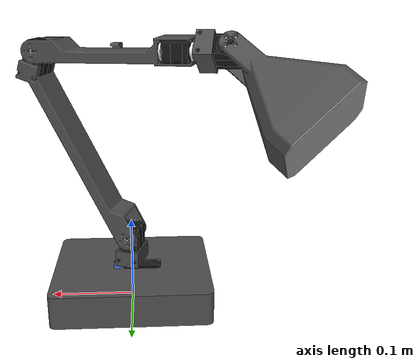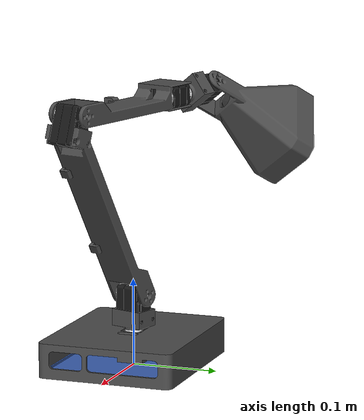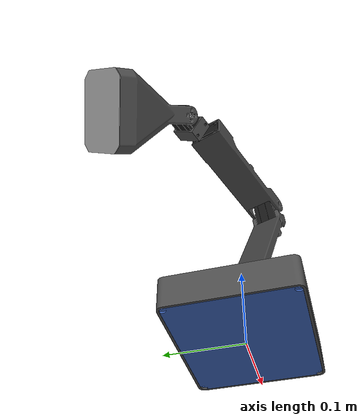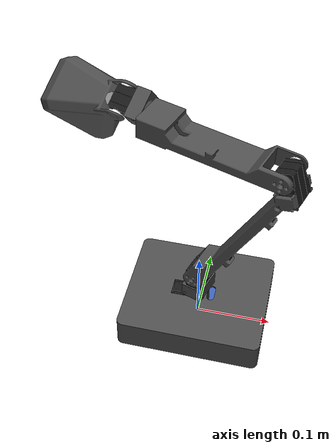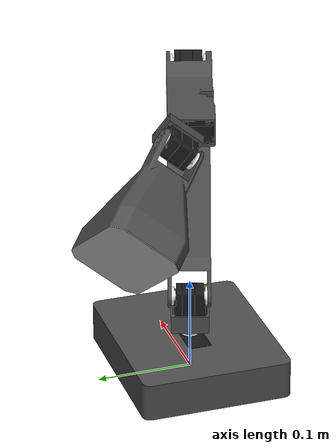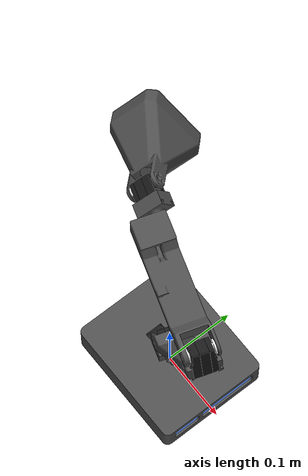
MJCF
<?xml version="1.0" ?>
<!-- Generated using onshape-to-robot -->
<!-- Onshape document_id: 16c9706360b5ad34f9c8db49 -->
<mujoco model="simulation">
  <compiler angle="radian" meshdir="assets" autolimits="true"/>
  <default>
    <default class="simulation">
      <joint frictionloss="0.1" armature="0.005"/>
      <position kp="50" dampratio="1"/>
      <default class="visual">
        <geom type="mesh" contype="0" conaffinity="0" group="2"/>
      </default>
      <default class="collision">
        <geom group="3"/>
      </default>
    </default>
  </default>
  <!-- Additional sensors.xml -->
  <sensor>
    <accelerometer name="accel_sensor" site="imu_site"/>
    <gyro name="gyro_sensor" site="imu_site"/>
  </sensor>
  <!-- Additional joints_properties.xml -->
  <default>
    <default class="sts3215">
      <geom contype="0" conaffinity="0"/>
      <joint damping="0.60" frictionloss="0.052" armature="0.028"/>
      <position kp="17.8" kv="0.0" forcerange="-3.35 3.35"/>
    </default>
    <default class="backlash">
      <!-- +/- 0.5° of backlash -->
      <joint damping="0.01" frictionloss="0" armature="0.01" limited="true" range="-0.008726646259971648 0.008726646259971648"/>
    </default>
  </default>
  <worldbody>
    <!-- Link lamparm__base_elbow -->
    <body name="lamparm__base_elbow" pos="0 0 0" quat="1 0 0 0" childclass="simulation">
      <freejoint name="lamparm__base_elbow_freejoint"/>
      <inertial pos="0.0729066 -0.0229022 0.217607" mass="0.234138" fullinertia="0.0010919 0.00129476 0.000320305 7.35843e-05 -0.000504692 0.000161616"/>
      <!-- Part lamparm__base_elbow -->
      <geom type="mesh" class="visual" pos="0.0683802 0.000449515 0.192601" quat="0.149185 0.238014 -0.0370254 0.959021" mesh="lamparm__base_elbow" material="lamparm__base_elbow_material"/>
      <geom type="mesh" class="collision" pos="0.0683802 0.000449515 0.192601" quat="0.149185 0.238014 -0.0370254 0.959021" mesh="lamparm__base_elbow" material="lamparm__base_elbow_material"/>
      <!-- Part 金属舵盘_驱动__v2 -->
      <geom type="mesh" class="visual" pos="0.0947995 -0.0378086 0.310793" quat="0.794936 0.0912975 0.586898 -0.12366" mesh="金属舵盘_驱动__v2" material="金属舵盘_驱动__v2_material"/>
      <geom type="mesh" class="collision" pos="0.0947995 -0.0378086 0.310793" quat="0.794936 0.0912975 0.586898 -0.12366" mesh="金属舵盘_驱动__v2" material="金属舵盘_驱动__v2_material"/>
      <!-- Part 金属舵盘_从动__v2 -->
      <geom type="mesh" class="visual" pos="0.090674 -0.0701329 0.29168" quat="0.12366 0.586898 -0.0912975 0.794936" mesh="金属舵盘_从动__v2" material="金属舵盘_从动__v2_material"/>
      <geom type="mesh" class="collision" pos="0.090674 -0.0701329 0.29168" quat="0.12366 0.586898 -0.0912975 0.794936" mesh="金属舵盘_从动__v2" material="金属舵盘_从动__v2_material"/>
      <!-- Part pcb_chazuo_92 -->
      <geom type="mesh" class="visual" pos="0.110043 -0.0244059 0.276867" quat="0.794936 0.0912975 0.586898 -0.12366" mesh="pcb_chazuo_92" material="pcb_chazuo_92_material"/>
      <geom type="mesh" class="collision" pos="0.110043 -0.0244059 0.276867" quat="0.794936 0.0912975 0.586898 -0.12366" mesh="pcb_chazuo_92" material="pcb_chazuo_92_material"/>
      <!-- Part xg_ziji_16 -->
      <geom type="mesh" class="visual" pos="0.110043 -0.0244059 0.276867" quat="0.794936 0.0912975 0.586898 -0.12366" mesh="xg_ziji_16" material="xg_ziji_16_material"/>
      <geom type="mesh" class="collision" pos="0.110043 -0.0244059 0.276867" quat="0.794936 0.0912975 0.586898 -0.12366" mesh="xg_ziji_16" material="xg_ziji_16_material"/>
      <!-- Part ge_27 -->
      <geom type="mesh" class="visual" pos="0.101068 -0.0278417 0.301237" quat="0.497548 0.626662 0.327559 -0.50244" mesh="ge_27" material="ge_27_material"/>
      <geom type="mesh" class="collision" pos="0.101068 -0.0278417 0.301237" quat="0.497548 0.626662 0.327559 -0.50244" mesh="ge_27" material="ge_27_material"/>
      <!-- Part sg_ziji_15 -->
      <geom type="mesh" class="visual" pos="0.110043 -0.0244059 0.276867" quat="0.794936 0.0912975 0.586898 -0.12366" mesh="sg_ziji_15" material="sg_ziji_15_material"/>
      <geom type="mesh" class="collision" pos="0.110043 -0.0244059 0.276867" quat="0.794936 0.0912975 0.586898 -0.12366" mesh="sg_ziji_15" material="sg_ziji_15_material"/>
      <!-- Part zk_122 -->
      <geom type="mesh" class="visual" pos="0.110043 -0.0244059 0.276867" quat="0.794936 0.0912975 0.586898 -0.12366" mesh="zk_122" material="zk_122_material"/>
      <geom type="mesh" class="collision" pos="0.110043 -0.0244059 0.276867" quat="0.794936 0.0912975 0.586898 -0.12366" mesh="zk_122" material="zk_122_material"/>
      <!-- Part motor_1723_3 -->
      <geom type="mesh" class="visual" pos="0.101964 -0.0458133 0.276499" quat="0.147105 0.151998 0.977104 -0.0228836" mesh="motor_1723_3" material="motor_1723_3_material"/>
      <geom type="mesh" class="collision" pos="0.101964 -0.0458133 0.276499" quat="0.147105 0.151998 0.977104 -0.0228836" mesh="motor_1723_3" material="motor_1723_3_material"/>
      <!-- Link lamparm__wrist_head -->
      <body name="lamparm__wrist_head" pos="0.00583234 0.0182927 0.08291" quat="0.570913 -0.417203 0.570913 0.417203">
        <!-- Joint from lamparm__base_elbow to lamparm__wrist_head -->
        <joint axis="0 0 1" name="2" type="hinge" range="-1.0842575396713956 2.0573351139183975" class="sts3215"/>
        <inertial pos="0.0193636 0.000541554 -0.0196637" mass="0.0953804" fullinertia="1.16713e-05 2.19256e-05 1.7794e-05 -3.19269e-07 9.361e-07 6.98105e-08"/>
        <!-- Part lamparm__wrist_head -->
        <geom type="mesh" class="visual" pos="0.04111 7.30741e-16 -0.0192" quat="0.5 -0.5 -0.5 0.5" mesh="lamparm__wrist_head" material="lamparm__wrist_head_material"/>
        <geom type="mesh" class="collision" pos="0.04111 7.30741e-16 -0.0192" quat="0.5 -0.5 -0.5 0.5" mesh="lamparm__wrist_head" material="lamparm__wrist_head_material"/>
        <!-- Part 金属舵盘_驱动__v2_2 -->
        <geom type="mesh" class="visual" pos="-0.01 1.67203e-18 -0.027" quat="0.707107 0.707107 0 -5.47763e-32" mesh="金属舵盘_驱动__v2" material="金属舵盘_驱动__v2_material"/>
        <geom type="mesh" class="collision" pos="-0.01 1.67203e-18 -0.027" quat="0.707107 0.707107 0 -5.47763e-32" mesh="金属舵盘_驱动__v2" material="金属舵盘_驱动__v2_material"/>
        <!-- Part 金属舵盘_从动__v2_2 -->
        <geom type="mesh" class="visual" pos="0.01 -7.90727e-16 -0.05905" quat="9.30303e-15 -3.53884e-15 0.707107 -0.707107" mesh="金属舵盘_从动__v2" material="金属舵盘_从动__v2_material"/>
        <geom type="mesh" class="collision" pos="0.01 -7.90727e-16 -0.05905" quat="9.30303e-15 -3.53884e-15 0.707107 -0.707107" mesh="金属舵盘_从动__v2" material="金属舵盘_从动__v2_material"/>
        <!-- Part pcb_chazuo_92_2 -->
        <geom type="mesh" class="visual" pos="0.0255 6.87024e-16 -0.0096" quat="0.707107 0.707107 0 -5.47763e-32" mesh="pcb_chazuo_92" material="pcb_chazuo_92_material"/>
        <geom type="mesh" class="collision" pos="0.0255 6.87024e-16 -0.0096" quat="0.707107 0.707107 0 -5.47763e-32" mesh="pcb_chazuo_92" material="pcb_chazuo_92_material"/>
        <!-- Part xg_ziji_16_2 -->
        <geom type="mesh" class="visual" pos="0.0255 6.87024e-16 -0.0096" quat="0.707107 0.707107 0 -5.47763e-32" mesh="xg_ziji_16" material="xg_ziji_16_material"/>
        <geom type="mesh" class="collision" pos="0.0255 6.87024e-16 -0.0096" quat="0.707107 0.707107 0 -5.47763e-32" mesh="xg_ziji_16" material="xg_ziji_16_material"/>
        <!-- Part ge_27_2 -->
        <geom type="mesh" class="visual" pos="-1.80411e-16 3.21139e-16 -0.0156" quat="1.6825e-14 1 2.44606e-15 3.23662e-16" mesh="ge_27" material="ge_27_material"/>
        <geom type="mesh" class="collision" pos="-1.80411e-16 3.21139e-16 -0.0156" quat="1.6825e-14 1 2.44606e-15 3.23662e-16" mesh="ge_27" material="ge_27_material"/>
        <!-- Part sg_ziji_15_2 -->
        <geom type="mesh" class="visual" pos="0.0255 6.87024e-16 -0.0096" quat="0.707107 0.707107 0 -5.47763e-32" mesh="sg_ziji_15" material="sg_ziji_15_material"/>
        <geom type="mesh" class="collision" pos="0.0255 6.87024e-16 -0.0096" quat="0.707107 0.707107 0 -5.47763e-32" mesh="sg_ziji_15" material="sg_ziji_15_material"/>
        <!-- Part zk_122_2 -->
        <geom type="mesh" class="visual" pos="0.0255 6.87024e-16 -0.0096" quat="0.707107 0.707107 0 -5.47763e-32" mesh="zk_122" material="zk_122_material"/>
        <geom type="mesh" class="collision" pos="0.0255 6.87024e-16 -0.0096" quat="0.707107 0.707107 0 -5.47763e-32" mesh="zk_122" material="zk_122_material"/>
        <!-- Part motor_1723_3_2 -->
        <geom type="mesh" class="visual" pos="0.0255 0.00125 -0.03245" quat="0.5 0.5 0.5 0.5" mesh="motor_1723_3" material="motor_1723_3_material"/>
        <geom type="mesh" class="collision" pos="0.0255 0.00125 -0.03245" quat="0.5 0.5 0.5 0.5" mesh="motor_1723_3" material="motor_1723_3_material"/>
        <!-- Link scs215_v5 -->
        <body name="scs215_v5" pos="0.04111 7.30741e-16 -0.0192" quat="0.5 -0.5 -0.5 0.5">
          <!-- Joint from lamparm__wrist_head to scs215_v5 -->
          <joint axis="0 0 1" name="1" type="hinge" range="-5.021033992714066 1.2621513144655205" class="sts3215"/>
          <inertial pos="0.00584437 0.00206639 -0.0244202" mass="0.41735" fullinertia="0.00100304 0.00122902 0.00205034 -8.49257e-05 -8.64397e-06 -3.34823e-06"/>
          <!-- Part lamp_base -->
          <geom type="mesh" class="visual" pos="0.0119093 0.0037971 -0.0378" quat="0.590014 2.27628e-15 -1.55431e-15 0.807393" mesh="lamp_base" material="lamp_base_material"/>
          <geom type="mesh" class="collision" pos="0.0119093 0.0037971 -0.0378" quat="0.590014 2.27628e-15 -1.55431e-15 0.807393" mesh="lamp_base" material="lamp_base_material"/>
          <!-- Part lamp_base_cover -->
          <geom type="mesh" class="visual" pos="0.0119093 0.0037971 -0.0378" quat="0.590014 2.41506e-15 -1.88738e-15 0.807393" mesh="lamp_base_cover" material="lamp_base_cover_material"/>
          <geom type="mesh" class="collision" pos="0.0119093 0.0037971 -0.0378" quat="0.590014 2.41506e-15 -1.88738e-15 0.807393" mesh="lamp_base_cover" material="lamp_base_cover_material"/>
          <!-- Part 金属舵盘_驱动__v2_3 -->
          <geom type="mesh" class="visual" pos="-0.00952746 -0.00303768 -0.027" quat="0.698703 0.698703 0.10869 0.10869" mesh="金属舵盘_驱动__v2" material="金属舵盘_驱动__v2_material"/>
          <geom type="mesh" class="collision" pos="-0.00952746 -0.00303768 -0.027" quat="0.698703 0.698703 0.10869 0.10869" mesh="金属舵盘_驱动__v2" material="金属舵盘_驱动__v2_material"/>
          <!-- Part 金属舵盘_从动__v2_3 -->
          <geom type="mesh" class="visual" pos="0.00952746 0.00303768 -0.05905" quat="0.10869 -0.10869 0.698703 -0.698703" mesh="金属舵盘_从动__v2" material="金属舵盘_从动__v2_material"/>
          <geom type="mesh" class="collision" pos="0.00952746 0.00303768 -0.05905" quat="0.10869 -0.10869 0.698703 -0.698703" mesh="金属舵盘_从动__v2" material="金属舵盘_从动__v2_material"/>
          <!-- Part pcb_chazuo_92_3 -->
          <geom type="mesh" class="visual" pos="0.024295 0.00774608 -0.0096" quat="0.698703 0.698703 0.10869 0.10869" mesh="pcb_chazuo_92" material="pcb_chazuo_92_material"/>
          <geom type="mesh" class="collision" pos="0.024295 0.00774608 -0.0096" quat="0.698703 0.698703 0.10869 0.10869" mesh="pcb_chazuo_92" material="pcb_chazuo_92_material"/>
          <!-- Part xg_ziji_16_3 -->
          <geom type="mesh" class="visual" pos="0.024295 0.00774608 -0.0096" quat="0.698703 0.698703 0.10869 0.10869" mesh="xg_ziji_16" material="xg_ziji_16_material"/>
          <geom type="mesh" class="collision" pos="0.024295 0.00774608 -0.0096" quat="0.698703 0.698703 0.10869 0.10869" mesh="xg_ziji_16" material="xg_ziji_16_material"/>
          <!-- Part ge_27_3 -->
          <geom type="mesh" class="visual" pos="-1.19702e-17 3.78772e-17 -0.0156" quat="1.59242e-15 -0.988116 -0.153711 1.25707e-15" mesh="ge_27" material="ge_27_material"/>
          <geom type="mesh" class="collision" pos="-1.19702e-17 3.78772e-17 -0.0156" quat="1.59242e-15 -0.988116 -0.153711 1.25707e-15" mesh="ge_27" material="ge_27_material"/>
          <!-- Part sg_ziji_15_3 -->
          <geom type="mesh" class="visual" pos="0.024295 0.00774608 -0.0096" quat="0.698703 0.698703 0.10869 0.10869" mesh="sg_ziji_15" material="sg_ziji_15_material"/>
          <geom type="mesh" class="collision" pos="0.024295 0.00774608 -0.0096" quat="0.698703 0.698703 0.10869 0.10869" mesh="sg_ziji_15" material="sg_ziji_15_material"/>
          <!-- Part zk_122_3 -->
          <geom type="mesh" class="visual" pos="0.024295 0.00774608 -0.0096" quat="0.698703 0.698703 0.10869 0.10869" mesh="zk_122" material="zk_122_material"/>
          <geom type="mesh" class="collision" pos="0.024295 0.00774608 -0.0096" quat="0.698703 0.698703 0.10869 0.10869" mesh="zk_122" material="zk_122_material"/>
          <!-- Part motor_1723_3_3 -->
          <geom type="mesh" class="visual" pos="0.0239153 0.00893702 -0.03245" quat="0.417203 0.417203 0.570913 0.570913" mesh="motor_1723_3" material="motor_1723_3_material"/>
          <geom type="mesh" class="collision" pos="0.0239153 0.00893702 -0.03245" quat="0.417203 0.417203 0.570913 0.570913" mesh="motor_1723_3" material="motor_1723_3_material"/>
          <!-- Frame imu_site -->
          <site group="3" name="imu_site" pos="-3.4944e-17 4.02192e-17 -0.0378" quat="1.81174e-15 -0.590014 -0.807393 -2.8812e-15"/>
        </body>
      </body>
      <!-- Link lamparm__elbow_wrist -->
      <body name="lamparm__elbow_wrist" pos="0.105806 -0.0129789 0.301237" quat="0.575614 0.423658 -0.566139 0.410693">
        <!-- Joint from lamparm__base_elbow to lamparm__elbow_wrist -->
        <joint axis="0 0 1" name="3" type="hinge" range="-2.820024081304335 0.3215685722854582" class="sts3215"/>
        <inertial pos="-0.00212937 0.119295 0.0220282" mass="0.206448" fullinertia="0.000632713 4.80236e-05 0.000602863 -1.84707e-05 -1.72868e-06 -1.49987e-05"/>
        <!-- Part lamparm__elbow_wrist -->
        <geom type="mesh" class="visual" pos="-0.00618 0.08736 0.03925" quat="0.707107 -0.707107 0 -1.89876e-18" mesh="lamparm__elbow_wrist" material="lamparm__elbow_wrist_material"/>
        <geom type="mesh" class="collision" pos="-0.00618 0.08736 0.03925" quat="0.707107 -0.707107 0 -1.89876e-18" mesh="lamparm__elbow_wrist" material="lamparm__elbow_wrist_material"/>
        <!-- Part 金属舵盘_驱动__v2_4 -->
        <geom type="mesh" class="visual" pos="2.60902e-15 0.158185 -0.003875" quat="0.707107 -0 -0.707107 -1.10011e-16" mesh="金属舵盘_驱动__v2" material="金属舵盘_驱动__v2_material"/>
        <geom type="mesh" class="collision" pos="2.60902e-15 0.158185 -0.003875" quat="0.707107 -0 -0.707107 -1.10011e-16" mesh="金属舵盘_驱动__v2" material="金属舵盘_驱动__v2_material"/>
        <!-- Part 金属舵盘_从动__v2_4 -->
        <geom type="mesh" class="visual" pos="3.4972e-15 0.126135 0.016125" quat="1.77931e-14 0.707107 2.09832e-14 -0.707107" mesh="金属舵盘_从动__v2" material="金属舵盘_从动__v2_material"/>
        <geom type="mesh" class="collision" pos="3.4972e-15 0.126135 0.016125" quat="1.77931e-14 0.707107 2.09832e-14 -0.707107" mesh="金属舵盘_从动__v2" material="金属舵盘_从动__v2_material"/>
        <!-- Part pcb_chazuo_92_4 -->
        <geom type="mesh" class="visual" pos="5.55112e-17 0.175585 0.031625" quat="0.707107 -0 -0.707107 -1.10011e-16" mesh="pcb_chazuo_92" material="pcb_chazuo_92_material"/>
        <geom type="mesh" class="collision" pos="5.55112e-17 0.175585 0.031625" quat="0.707107 -0 -0.707107 -1.10011e-16" mesh="pcb_chazuo_92" material="pcb_chazuo_92_material"/>
        <!-- Part xg_ziji_16_4 -->
        <geom type="mesh" class="visual" pos="5.55112e-17 0.175585 0.031625" quat="0.707107 -0 -0.707107 -1.10011e-16" mesh="xg_ziji_16" material="xg_ziji_16_material"/>
        <geom type="mesh" class="collision" pos="5.55112e-17 0.175585 0.031625" quat="0.707107 -0 -0.707107 -1.10011e-16" mesh="xg_ziji_16" material="xg_ziji_16_material"/>
        <!-- Part ge_27_4 -->
        <geom type="mesh" class="visual" pos="3.88578e-16 0.169585 0.006125" quat="0.5 0.5 -0.5 0.5" mesh="ge_27" material="ge_27_material"/>
        <geom type="mesh" class="collision" pos="3.88578e-16 0.169585 0.006125" quat="0.5 0.5 -0.5 0.5" mesh="ge_27" material="ge_27_material"/>
        <!-- Part sg_ziji_15_4 -->
        <geom type="mesh" class="visual" pos="5.55112e-17 0.175585 0.031625" quat="0.707107 -0 -0.707107 -1.10011e-16" mesh="sg_ziji_15" material="sg_ziji_15_material"/>
        <geom type="mesh" class="collision" pos="5.55112e-17 0.175585 0.031625" quat="0.707107 -0 -0.707107 -1.10011e-16" mesh="sg_ziji_15" material="sg_ziji_15_material"/>
        <!-- Part zk_122_4 -->
        <geom type="mesh" class="visual" pos="5.55112e-17 0.175585 0.031625" quat="0.707107 -0 -0.707107 -1.10011e-16" mesh="zk_122" material="zk_122_material"/>
        <geom type="mesh" class="collision" pos="5.55112e-17 0.175585 0.031625" quat="0.707107 -0 -0.707107 -1.10011e-16" mesh="zk_122" material="zk_122_material"/>
        <!-- Part motor_1723_3_4 -->
        <geom type="mesh" class="visual" pos="0.00125 0.152735 0.031625" quat="1 -8.11122e-15 -1.31006e-14 1.43659e-14" mesh="motor_1723_3" material="motor_1723_3_material"/>
        <geom type="mesh" class="collision" pos="0.00125 0.152735 0.031625" quat="1 -8.11122e-15 -1.31006e-14 1.43659e-14" mesh="motor_1723_3" material="motor_1723_3_material"/>
        <!-- Link lamparm__wrist_head_2 -->
        <body name="lamparm__wrist_head_2" pos="2.55351e-15 0.185185 0.006125" quat="0.670659 0.670659 -0.224092 0.224092">
          <!-- Joint from lamparm__elbow_wrist to lamparm__wrist_head_2 -->
          <joint axis="0 0 1" name="4" type="hinge" range="-3.7865399953934267 2.4966453117861596" class="sts3215"/>
          <inertial pos="0.000541554 -0.000463734 -0.0217464" mass="0.0953804" fullinertia="2.19256e-05 1.7794e-05 1.16713e-05 6.98105e-08 -3.19269e-07 9.361e-07"/>
          <!-- Part lamparm__wrist_head_2 -->
          <geom type="mesh" class="visual" pos="0 -2.77556e-17 -1.38778e-17" quat="0 1 0 0" mesh="lamparm__wrist_head" material="lamparm__wrist_head_material"/>
          <geom type="mesh" class="collision" pos="0 -2.77556e-17 -1.38778e-17" quat="0 1 0 0" mesh="lamparm__wrist_head" material="lamparm__wrist_head_material"/>
          <!-- Part 金属舵盘_驱动__v2_5 -->
          <geom type="mesh" class="visual" pos="1.60982e-15 -0.0078 -0.05111" quat="0.707107 1.0961e-15 -0.707107 -8.93328e-16" mesh="金属舵盘_驱动__v2" material="金属舵盘_驱动__v2_material"/>
          <geom type="mesh" class="collision" pos="1.60982e-15 -0.0078 -0.05111" quat="0.707107 1.0961e-15 -0.707107 -8.93328e-16" mesh="金属舵盘_驱动__v2" material="金属舵盘_驱动__v2_material"/>
          <!-- Part 金属舵盘_从动__v2_5 -->
          <geom type="mesh" class="visual" pos="3.88578e-16 -0.03985 -0.03111" quat="2.56969e-15 0.707107 -7.77156e-16 -0.707107" mesh="金属舵盘_从动__v2" material="金属舵盘_从动__v2_material"/>
          <geom type="mesh" class="collision" pos="3.88578e-16 -0.03985 -0.03111" quat="2.56969e-15 0.707107 -7.77156e-16 -0.707107" mesh="金属舵盘_从动__v2" material="金属舵盘_从动__v2_material"/>
          <!-- Part pcb_chazuo_92_5 -->
          <geom type="mesh" class="visual" pos="1.94289e-16 0.0096 -0.01561" quat="0.707107 1.0961e-15 -0.707107 -8.93328e-16" mesh="pcb_chazuo_92" material="pcb_chazuo_92_material"/>
          <geom type="mesh" class="collision" pos="1.94289e-16 0.0096 -0.01561" quat="0.707107 1.0961e-15 -0.707107 -8.93328e-16" mesh="pcb_chazuo_92" material="pcb_chazuo_92_material"/>
          <!-- Part xg_ziji_16_5 -->
          <geom type="mesh" class="visual" pos="1.94289e-16 0.0096 -0.01561" quat="0.707107 1.0961e-15 -0.707107 -8.93328e-16" mesh="xg_ziji_16" material="xg_ziji_16_material"/>
          <geom type="mesh" class="collision" pos="1.94289e-16 0.0096 -0.01561" quat="0.707107 1.0961e-15 -0.707107 -8.93328e-16" mesh="xg_ziji_16" material="xg_ziji_16_material"/>
          <!-- Part ge_27_5 -->
          <geom type="mesh" class="visual" pos="8.32667e-17 0.0036 -0.04111" quat="0.5 0.5 -0.5 0.5" mesh="ge_27" material="ge_27_material"/>
          <geom type="mesh" class="collision" pos="8.32667e-17 0.0036 -0.04111" quat="0.5 0.5 -0.5 0.5" mesh="ge_27" material="ge_27_material"/>
          <!-- Part sg_ziji_15_5 -->
          <geom type="mesh" class="visual" pos="1.94289e-16 0.0096 -0.01561" quat="0.707107 1.0961e-15 -0.707107 -8.93328e-16" mesh="sg_ziji_15" material="sg_ziji_15_material"/>
          <geom type="mesh" class="collision" pos="1.94289e-16 0.0096 -0.01561" quat="0.707107 1.0961e-15 -0.707107 -8.93328e-16" mesh="sg_ziji_15" material="sg_ziji_15_material"/>
          <!-- Part zk_122_5 -->
          <geom type="mesh" class="visual" pos="1.94289e-16 0.0096 -0.01561" quat="0.707107 1.0961e-15 -0.707107 -8.93328e-16" mesh="zk_122" material="zk_122_material"/>
          <geom type="mesh" class="collision" pos="1.94289e-16 0.0096 -0.01561" quat="0.707107 1.0961e-15 -0.707107 -8.93328e-16" mesh="zk_122" material="zk_122_material"/>
          <!-- Part motor_1723_3_5 -->
          <geom type="mesh" class="visual" pos="0.00125 -0.01325 -0.01561" quat="1 1.45952e-14 2.05391e-14 2.58019e-14" mesh="motor_1723_3" material="motor_1723_3_material"/>
          <geom type="mesh" class="collision" pos="0.00125 -0.01325 -0.01561" quat="1 1.45952e-14 2.05391e-14 2.58019e-14" mesh="motor_1723_3" material="motor_1723_3_material"/>
          <!-- Link diffuser -->
          <body name="diffuser" pos="1.58207e-15 0.0192 -0.04111" quat="0.5 0.5 -0.5 0.5">
            <!-- Joint from lamparm__wrist_head_2 to diffuser -->
            <joint axis="0 0 1" name="5" type="hinge" range="-0.8533371981959901 2.288255455393803" class="sts3215"/>
            <inertial pos="-0.0641891 0.0560099 0.0186249" mass="0.0933113" fullinertia="0.000164418 0.000170062 0.000206169 2.06383e-05 7.21792e-11 4.01082e-10"/>
            <!-- Part diffuser -->
            <geom type="mesh" class="visual" pos="-0.0018837 0.00164368 0.03925" quat="0.643714 0.643714 0.292629 0.292629" mesh="diffuser" material="diffuser_material"/>
            <geom type="mesh" class="collision" pos="-0.0018837 0.00164368 0.03925" quat="0.643714 0.643714 0.292629 0.292629" mesh="diffuser" material="diffuser_material"/>
            <!-- Part lamphead -->
            <geom type="mesh" class="visual" pos="-0.0018837 0.00164368 0.03925" quat="0.643714 0.643714 0.292629 0.292629" mesh="lamphead" material="lamphead_material"/>
            <geom type="mesh" class="collision" pos="-0.0018837 0.00164368 0.03925" quat="0.643714 0.643714 0.292629 0.292629" mesh="lamphead" material="lamphead_material"/>
          </body>
        </body>
      </body>
    </body>
  </worldbody>
  <asset>
    <mesh file="xg_ziji_16.stl"/>
    <mesh file="ge_27.stl"/>
    <mesh file="金属舵盘_驱动__v2.stl"/>
    <mesh file="金属舵盘_从动__v2.stl"/>
    <mesh file="lamp_base_cover.stl"/>
    <mesh file="lamp_base.stl"/>
    <mesh file="lamparm__elbow_wrist.stl"/>
    <mesh file="lamparm__base_elbow.stl"/>
    <mesh file="diffuser.stl"/>
    <mesh file="sg_ziji_15.stl"/>
    <mesh file="lamparm__wrist_head.stl"/>
    <mesh file="lamphead.stl"/>
    <mesh file="motor_1723_3.stl"/>
    <mesh file="pcb_chazuo_92.stl"/>
    <mesh file="zk_122.stl"/>
    <material name="lamparm__base_elbow_material" rgba="0.301961 0.301961 0.301961 1"/>
    <material name="金属舵盘_驱动__v2_material" rgba="0.960784 0.960784 0.964706 1"/>
    <material name="金属舵盘_从动__v2_material" rgba="0.960784 0.960784 0.964706 1"/>
    <material name="pcb_chazuo_92_material" rgba="0.0980392 0.0980392 0.0980392 1"/>
    <material name="xg_ziji_16_material" rgba="0.0980392 0.0980392 0.0980392 1"/>
    <material name="ge_27_material" rgba="0.0980392 0.0980392 0.0980392 1"/>
    <material name="sg_ziji_15_material" rgba="0.0980392 0.0980392 0.0980392 1"/>
    <material name="zk_122_material" rgba="0.0980392 0.0980392 0.0980392 1"/>
    <material name="motor_1723_3_material" rgba="0.0980392 0.0980392 0.0980392 1"/>
    <material name="lamparm__wrist_head_material" rgba="0.301961 0.301961 0.301961 1"/>
    <material name="lamp_base_material" rgba="0.301961 0.301961 0.301961 1"/>
    <material name="lamp_base_cover_material" rgba="0.231373 0.380392 0.705882 1"/>
    <material name="lamparm__elbow_wrist_material" rgba="0.301961 0.301961 0.301961 1"/>
    <material name="diffuser_material" rgba="0.647059 0.647059 0.647059 1"/>
    <material name="lamphead_material" rgba="0.301961 0.301961 0.301961 1"/>
  </asset>
  <actuator>
    <position class="sts3215" name="2" joint="2" inheritrange="1"/>
    <position class="sts3215" name="1" joint="1" inheritrange="1"/>
    <position class="sts3215" name="3" joint="3" inheritrange="1"/>
    <position class="sts3215" name="4" joint="4" inheritrange="1"/>
    <position class="sts3215" name="5" joint="5" inheritrange="1"/>
  </actuator>
  <equality/>
</mujoco>
